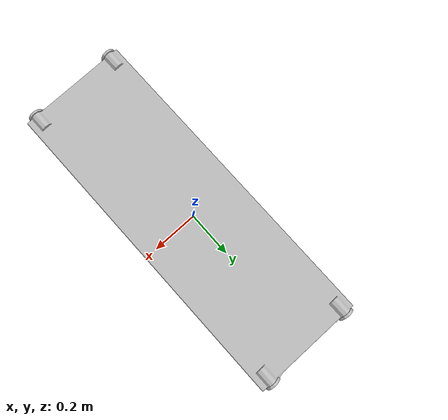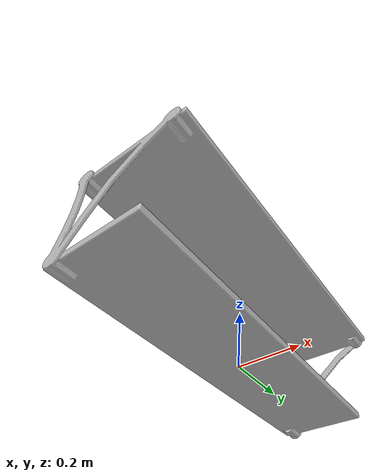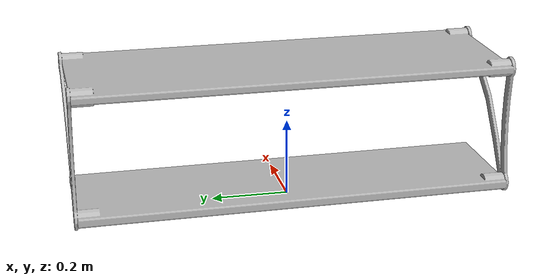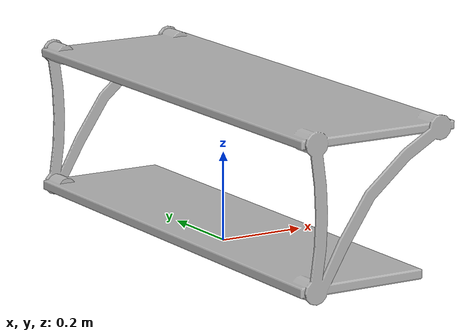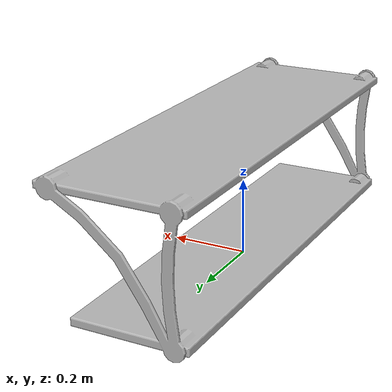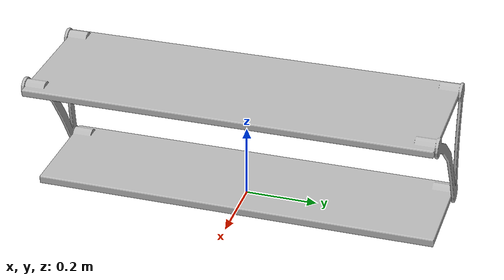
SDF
<?xml version='1.0'?>
<sdf version='1.4'>
  <model name='97'>
    <pose>0 0 0 0 0 0</pose>
    <static>true</static>
    <link name='link'>
      <collision name='collision'>
        <pose>0 0 0 0 0 0</pose>
        <geometry>
          <box>
            <size>0.38 1.13 2</size>
          </box>
        </geometry>
      </collision>
      <visual name='visual'>
        <pose>0 0 0 0 0 0</pose>
        <geometry>
          <mesh><uri>model://97/97.dae</uri></mesh>
        </geometry>
      </visual>
    </link>
  </model>
</sdf>
